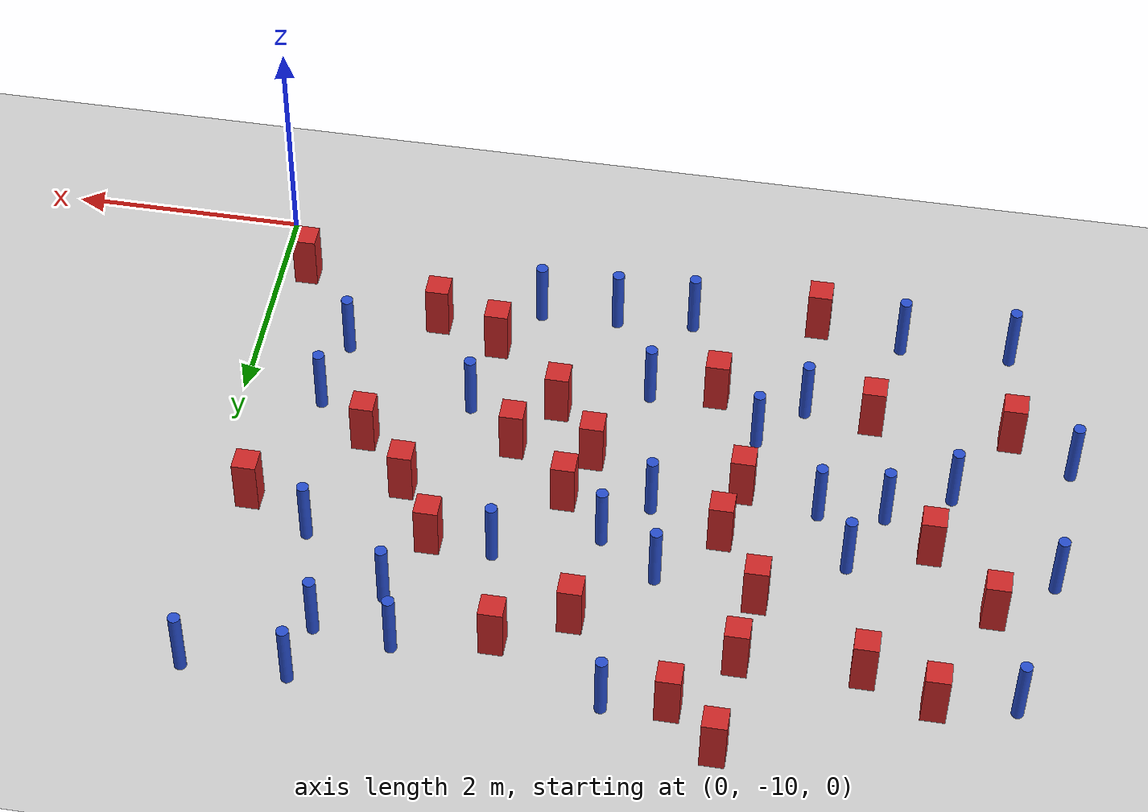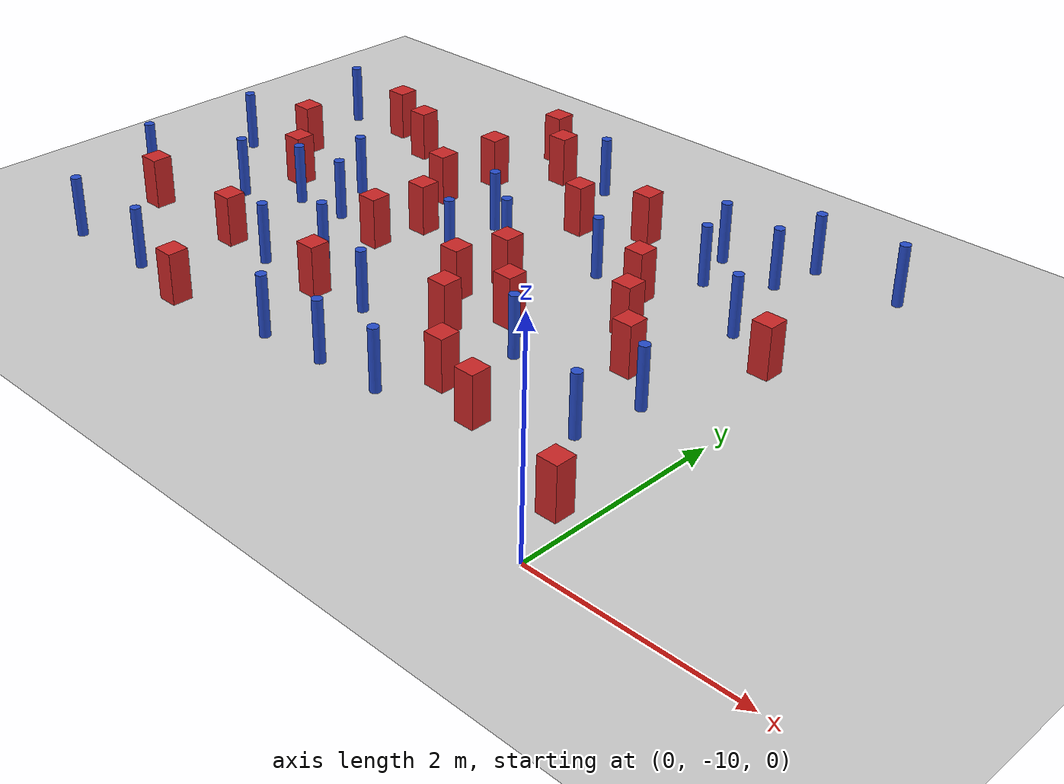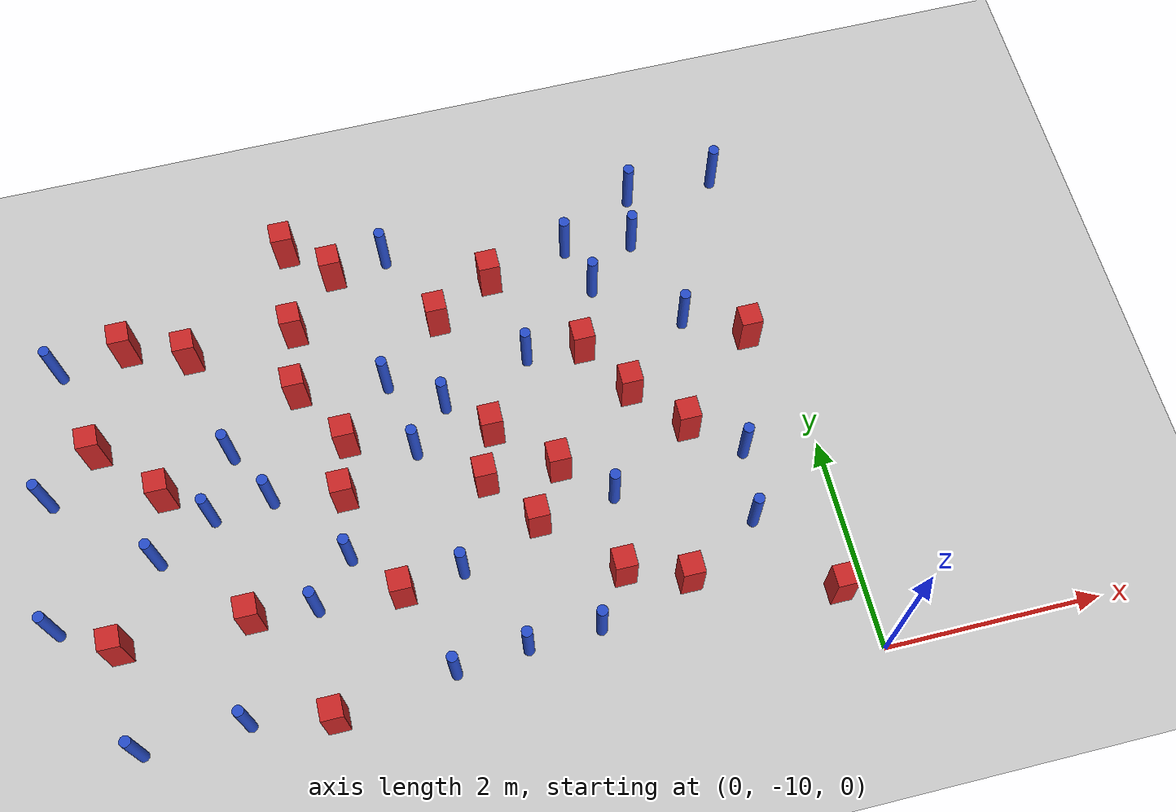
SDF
<sdf version="1.6">
 <world name="default">
  <model name="ground_plane">
   <static>1</static>
   <link name="link">
    <collision name="collision">
     <geometry><plane><normal>0 0 1</normal><size>100 100</size></plane></geometry>
     <surface><friction><ode><mu>100</mu><mu2>50</mu2></ode></friction></surface>
    </collision>
    <visual name="visual">
     <cast_shadows>0</cast_shadows>
     <geometry><plane><normal>0 0 1</normal><size>100 100</size></plane></geometry>
     <material>
      <ambient>1.0 1.0 1.0 1.0</ambient>
      <diffuse>0.8 0.8 0.8 1.0</diffuse>
      <specular>0.01 0.01 0.01 1.000000</specular>
     </material>
    </visual>
   </link>
  </model>
  <model name="square_post_obstacle7">
   <static>true</static>
   <pose>-4.02804060044 -5.23831961809 -6.11067671241e-07 -5.50515727128e-06 -8.79689657224e-07 2.37013304536e-05</pose>
   <link name="link">
    <pose>0 0 0.25 0 -0 0</pose>
    <inertial>
     <mass>100</mass>
     <inertia>
      <ixx>0.166667</ixx>
      <ixy>0</ixy>
      <ixz>0</ixz>
      <iyy>0.166667</iyy>
      <iyz>0</iyz>
      <izz>0.166667</izz>
     </inertia>
    </inertial>
    <collision name="collision"><geometry><box><size>.2 .2 .5</size></box></geometry></collision>
    <visual name="visual">
     <geometry><box><size>.2 .2 .5</size></box></geometry>
     <material>
      <script><name>Gazebo/Red</name><uri>file://media/materials/scripts/gazebo.material</uri></script>
     </material>
    </visual>
   </link>
  </model>
  <model name="pole_obstacle6">
   <static>true</static>
   <pose>-6.9229522516 -6.95452196529 -9.47619616065e-06 5.49618799737e-07 2.36310414037e-07 -1.55090534814e-07</pose>
   <link name="link">
    <pose>0 0 0.3 0 -0 0</pose>
    <inertial>
     <mass>1</mass>
     <inertia><ixx>0.145833</ixx><ixy>0</ixy><ixz>0</ixz><iyy>0.145833</iyy><iyz>0</iyz><izz>0.125</izz></inertia>
    </inertial>
    <collision name="collision">
     <geometry><cylinder><radius>0.05</radius><length>.6</length></cylinder></geometry>
    </collision>
    <visual name="visual">
     <geometry><cylinder><radius>0.05</radius><length>.6</length></cylinder></geometry>
     <material>
      <script><name>Gazebo/Blue</name><uri>file://media/materials/scripts/gazebo.material</uri></script>
     </material>
    </visual>
   </link>
  </model>
  <model name="pole_obstacle11">
   <static>true</static>
   <pose>-3.60925218692 -7.22983239693 -9.47619616065e-06 5.49618799738e-07 2.3631041406e-07 -1.55090534801e-07</pose>
   <link name="link">
    <pose>0 0 0.3 0 -0 0</pose>
    <inertial>
     <mass>1</mass>
     <inertia><ixx>0.145833</ixx><ixy>0</ixy><ixz>0</ixz><iyy>0.145833</iyy><iyz>0</iyz><izz>0.125</izz></inertia>
    </inertial>
    <collision name="collision">
     <geometry><cylinder><radius>0.05</radius><length>.6</length></cylinder></geometry>
    </collision>
    <visual name="visual">
     <geometry><cylinder><radius>0.05</radius><length>.6</length></cylinder></geometry>
     <material>
      <script><name>Gazebo/Blue</name><uri>file://media/materials/scripts/gazebo.material</uri></script>
     </material>
    </visual>
   </link>
  </model>
  <model name="square_post_obstacle24">
   <static>true</static>
   <pose>-5.48483218585 -5.80153002586 -6.11067671241e-07 -5.50515727128e-06 -8.79689657224e-07 2.37013304536e-05</pose>
   <link name="link">
    <pose>0 0 0.25 0 -0 0</pose>
    <inertial>
     <mass>100</mass>
     <inertia>
      <ixx>0.166667</ixx>
      <ixy>0</ixy>
      <ixz>0</ixz>
      <iyy>0.166667</iyy>
      <iyz>0</iyz>
      <izz>0.166667</izz>
     </inertia>
    </inertial>
    <collision name="collision"><geometry><box><size>.2 .2 .5</size></box></geometry></collision>
    <visual name="visual">
     <geometry><box><size>.2 .2 .5</size></box></geometry>
     <material>
      <script><name>Gazebo/Red</name><uri>file://media/materials/scripts/gazebo.material</uri></script>
     </material>
    </visual>
   </link>
  </model>
  <model name="square_post_obstacle25">
   <static>true</static>
   <pose>-3.05364938784 -7.67598235682 -6.11067671241e-07 -5.50515727128e-06 -8.79689657224e-07 2.37013304536e-05</pose>
   <link name="link">
    <pose>0 0 0.25 0 -0 0</pose>
    <inertial>
     <mass>100</mass>
     <inertia>
      <ixx>0.166667</ixx>
      <ixy>0</ixy>
      <ixz>0</ixz>
      <iyy>0.166667</iyy>
      <iyz>0</iyz>
      <izz>0.166667</izz>
     </inertia>
    </inertial>
    <collision name="collision"><geometry><box><size>.2 .2 .5</size></box></geometry></collision>
    <visual name="visual">
     <geometry><box><size>.2 .2 .5</size></box></geometry>
     <material>
      <script><name>Gazebo/Red</name><uri>file://media/materials/scripts/gazebo.material</uri></script>
     </material>
    </visual>
   </link>
  </model>
  <model name="pole_obstacle19">
   <static>true</static>
   <pose>-6.03911409599 -7.73787527772 -9.47619616065e-06 5.49618799737e-07 2.36310414037e-07 -1.55090534814e-07</pose>
   <link name="link">
    <pose>0 0 0.3 0 -0 0</pose>
    <inertial>
     <mass>1</mass>
     <inertia><ixx>0.145833</ixx><ixy>0</ixy><ixz>0</ixz><iyy>0.145833</iyy><iyz>0</iyz><izz>0.125</izz></inertia>
    </inertial>
    <collision name="collision">
     <geometry><cylinder><radius>0.05</radius><length>.6</length></cylinder></geometry>
    </collision>
    <visual name="visual">
     <geometry><cylinder><radius>0.05</radius><length>.6</length></cylinder></geometry>
     <material>
      <script><name>Gazebo/Blue</name><uri>file://media/materials/scripts/gazebo.material</uri></script>
     </material>
    </visual>
   </link>
  </model>
  <model name="square_post_obstacle29">
   <static>true</static>
   <pose>-5.30857663624 -8.45025386282 -6.11067671241e-07 -5.50515727128e-06 -8.79689657224e-07 2.37013304536e-05</pose>
   <link name="link">
    <pose>0 0 0.25 0 -0 0</pose>
    <inertial>
     <mass>100</mass>
     <inertia>
      <ixx>0.166667</ixx>
      <ixy>0</ixy>
      <ixz>0</ixz>
      <iyy>0.166667</iyy>
      <iyz>0</iyz>
      <izz>0.166667</izz>
     </inertia>
    </inertial>
    <collision name="collision"><geometry><box><size>.2 .2 .5</size></box></geometry></collision>
    <visual name="visual">
     <geometry><box><size>.2 .2 .5</size></box></geometry>
     <material>
      <script><name>Gazebo/Red</name><uri>file://media/materials/scripts/gazebo.material</uri></script>
     </material>
    </visual>
   </link>
  </model>
  <model name="pole_obstacle32">
   <static>true</static>
   <pose>-1.63588111275 -5.95905431088 -9.47619616065e-06 5.49618799737e-07 2.36310414061e-07 -1.550905348e-07</pose>
   <link name="link">
    <pose>0 0 0.3 0 -0 0</pose>
    <inertial>
     <mass>1</mass>
     <inertia><ixx>0.145833</ixx><ixy>0</ixy><ixz>0</ixz><iyy>0.145833</iyy><iyz>0</iyz><izz>0.125</izz></inertia>
    </inertial>
    <collision name="collision">
     <geometry><cylinder><radius>0.05</radius><length>.6</length></cylinder></geometry>
    </collision>
    <visual name="visual">
     <geometry><cylinder><radius>0.05</radius><length>.6</length></cylinder></geometry>
     <material>
      <script><name>Gazebo/Blue</name><uri>file://media/materials/scripts/gazebo.material</uri></script>
     </material>
    </visual>
   </link>
  </model>
  <model name="pole_obstacle34">
   <static>true</static>
   <pose>-6.69508582564 -5.67478176775 -9.47619616065e-06 5.49618799737e-07 2.36310414037e-07 -1.55090534814e-07</pose>
   <link name="link">
    <pose>0 0 0.3 0 -0 0</pose>
    <inertial>
     <mass>1</mass>
     <inertia><ixx>0.145833</ixx><ixy>0</ixy><ixz>0</ixz><iyy>0.145833</iyy><iyz>0</iyz><izz>0.125</izz></inertia>
    </inertial>
    <collision name="collision">
     <geometry><cylinder><radius>0.05</radius><length>.6</length></cylinder></geometry>
    </collision>
    <visual name="visual">
     <geometry><cylinder><radius>0.05</radius><length>.6</length></cylinder></geometry>
     <material>
      <script><name>Gazebo/Blue</name><uri>file://media/materials/scripts/gazebo.material</uri></script>
     </material>
    </visual>
   </link>
  </model>
  <model name="pole_obstacle35">
   <static>true</static>
   <pose>-0.792733380238 -8.59457340625 -9.47619616065e-06 5.49618799737e-07 2.36310414038e-07 -1.55090534813e-07</pose>
   <link name="link">
    <pose>0 0 0.3 0 -0 0</pose>
    <inertial>
     <mass>1</mass>
     <inertia><ixx>0.145833</ixx><ixy>0</ixy><ixz>0</ixz><iyy>0.145833</iyy><iyz>0</iyz><izz>0.125</izz></inertia>
    </inertial>
    <collision name="collision">
     <geometry><cylinder><radius>0.05</radius><length>.6</length></cylinder></geometry>
    </collision>
    <visual name="visual">
     <geometry><cylinder><radius>0.05</radius><length>.6</length></cylinder></geometry>
     <material>
      <script><name>Gazebo/Blue</name><uri>file://media/materials/scripts/gazebo.material</uri></script>
     </material>
    </visual>
   </link>
  </model>
  <model name="pole_obstacle37">
   <static>true</static>
   <pose>-3.74282692416 -6.50302156046 -9.47619616065e-06 5.49618799738e-07 2.3631041406e-07 -1.55090534801e-07</pose>
   <link name="link">
    <pose>0 0 0.3 0 -0 0</pose>
    <inertial>
     <mass>1</mass>
     <inertia><ixx>0.145833</ixx><ixy>0</ixy><ixz>0</ixz><iyy>0.145833</iyy><iyz>0</iyz><izz>0.125</izz></inertia>
    </inertial>
    <collision name="collision">
     <geometry><cylinder><radius>0.05</radius><length>.6</length></cylinder></geometry>
    </collision>
    <visual name="visual">
     <geometry><cylinder><radius>0.05</radius><length>.6</length></cylinder></geometry>
     <material>
      <script><name>Gazebo/Blue</name><uri>file://media/materials/scripts/gazebo.material</uri></script>
     </material>
    </visual>
   </link>
  </model>
  <model name="pole_obstacle51">
   <static>true</static>
   <pose>-6.40917971997 -9.39622680746 -9.47619616065e-06 5.49618799737e-07 2.36310414065e-07 -1.55090534796e-07</pose>
   <link name="link">
    <pose>0 0 0.3 0 -0 0</pose>
    <inertial>
     <mass>1</mass>
     <inertia><ixx>0.145833</ixx><ixy>0</ixy><ixz>0</ixz><iyy>0.145833</iyy><iyz>0</iyz><izz>0.125</izz></inertia>
    </inertial>
    <collision name="collision">
     <geometry><cylinder><radius>0.05</radius><length>.6</length></cylinder></geometry>
    </collision>
    <visual name="visual">
     <geometry><cylinder><radius>0.05</radius><length>.6</length></cylinder></geometry>
     <material>
      <script><name>Gazebo/Blue</name><uri>file://media/materials/scripts/gazebo.material</uri></script>
     </material>
    </visual>
   </link>
  </model>
  <model name="square_post_obstacle56">
   <static>true</static>
   <pose>-6.47427793407 -8.45497912225 -6.11067671241e-07 -5.50515727128e-06 -8.79689657224e-07 2.37013304536e-05</pose>
   <link name="link">
    <pose>0 0 0.25 0 -0 0</pose>
    <inertial>
     <mass>100</mass>
     <inertia>
      <ixx>0.166667</ixx>
      <ixy>0</ixy>
      <ixz>0</ixz>
      <iyy>0.166667</iyy>
      <iyz>0</iyz>
      <izz>0.166667</izz>
     </inertia>
    </inertial>
    <collision name="collision"><geometry><box><size>.2 .2 .5</size></box></geometry></collision>
    <visual name="visual">
     <geometry><box><size>.2 .2 .5</size></box></geometry>
     <material>
      <script><name>Gazebo/Red</name><uri>file://media/materials/scripts/gazebo.material</uri></script>
     </material>
    </visual>
   </link>
  </model>
  <model name="square_post_obstacle61">
   <static>true</static>
   <pose>-4.32503650421 -7.51398686989 -6.11067671241e-07 -5.50515727128e-06 -8.79689657224e-07 2.37013304536e-05</pose>
   <link name="link">
    <pose>0 0 0.25 0 -0 0</pose>
    <inertial>
     <mass>100</mass>
     <inertia>
      <ixx>0.166667</ixx>
      <ixy>0</ixy>
      <ixz>0</ixz>
      <iyy>0.166667</iyy>
      <iyz>0</iyz>
      <izz>0.166667</izz>
     </inertia>
    </inertial>
    <collision name="collision"><geometry><box><size>.2 .2 .5</size></box></geometry></collision>
    <visual name="visual">
     <geometry><box><size>.2 .2 .5</size></box></geometry>
     <material>
      <script><name>Gazebo/Red</name><uri>file://media/materials/scripts/gazebo.material</uri></script>
     </material>
    </visual>
   </link>
  </model>
  <model name="pole_obstacle62">
   <static>true</static>
   <pose>-1.79225064878 -5.47732661525 -9.47619616065e-06 5.49618799737e-07 2.36310414061e-07 -1.550905348e-07</pose>
   <link name="link">
    <pose>0 0 0.3 0 -0 0</pose>
    <inertial>
     <mass>1</mass>
     <inertia><ixx>0.145833</ixx><ixy>0</ixy><ixz>0</ixz><iyy>0.145833</iyy><iyz>0</iyz><izz>0.125</izz></inertia>
    </inertial>
    <collision name="collision">
     <geometry><cylinder><radius>0.05</radius><length>.6</length></cylinder></geometry>
    </collision>
    <visual name="visual">
     <geometry><cylinder><radius>0.05</radius><length>.6</length></cylinder></geometry>
     <material>
      <script><name>Gazebo/Blue</name><uri>file://media/materials/scripts/gazebo.material</uri></script>
     </material>
    </visual>
   </link>
  </model>
  <model name="pole_obstacle66">
   <static>true</static>
   <pose>-2.41190833652 -6.53171262355 -9.47619616065e-06 5.49618799738e-07 2.3631041406e-07 -1.55090534801e-07</pose>
   <link name="link">
    <pose>0 0 0.3 0 -0 0</pose>
    <inertial>
     <mass>1</mass>
     <inertia><ixx>0.145833</ixx><ixy>0</ixy><ixz>0</ixz><iyy>0.145833</iyy><iyz>0</iyz><izz>0.125</izz></inertia>
    </inertial>
    <collision name="collision">
     <geometry><cylinder><radius>0.05</radius><length>.6</length></cylinder></geometry>
    </collision>
    <visual name="visual">
     <geometry><cylinder><radius>0.05</radius><length>.6</length></cylinder></geometry>
     <material>
      <script><name>Gazebo/Blue</name><uri>file://media/materials/scripts/gazebo.material</uri></script>
     </material>
    </visual>
   </link>
  </model>
  <model name="square_post_obstacle71">
   <static>true</static>
   <pose>-0.244228543276 -9.40671352236 -6.11067671241e-07 -5.50515727128e-06 -8.79689657224e-07 2.37013304536e-05</pose>
   <link name="link">
    <pose>0 0 0.25 0 -0 0</pose>
    <inertial>
     <mass>100</mass>
     <inertia>
      <ixx>0.166667</ixx>
      <ixy>0</ixy>
      <ixz>0</ixz>
      <iyy>0.166667</iyy>
      <iyz>0</iyz>
      <izz>0.166667</izz>
     </inertia>
    </inertial>
    <collision name="collision"><geometry><box><size>.2 .2 .5</size></box></geometry></collision>
    <visual name="visual">
     <geometry><box><size>.2 .2 .5</size></box></geometry>
     <material>
      <script><name>Gazebo/Red</name><uri>file://media/materials/scripts/gazebo.material</uri></script>
     </material>
    </visual>
   </link>
  </model>
  <model name="pole_obstacle68">
   <static>true</static>
   <pose>-3.02412012906 -9.27624175386 -9.4761961606e-06 5.49618799729e-07 2.36310414e-07 -1.55090534824e-07</pose>
   <link name="link">
    <pose>0 0 0.3 0 -0 0</pose>
    <inertial>
     <mass>1</mass>
     <inertia><ixx>0.145833</ixx><ixy>0</ixy><ixz>0</ixz><iyy>0.145833</iyy><iyz>0</iyz><izz>0.125</izz></inertia>
    </inertial>
    <collision name="collision">
     <geometry><cylinder><radius>0.05</radius><length>.6</length></cylinder></geometry>
    </collision>
    <visual name="visual">
     <geometry><cylinder><radius>0.05</radius><length>.6</length></cylinder></geometry>
     <material>
      <script><name>Gazebo/Blue</name><uri>file://media/materials/scripts/gazebo.material</uri></script>
     </material>
    </visual>
   </link>
  </model>
  <model name="pole_obstacle73">
   <static>true</static>
   <pose>-5.47801577004 -9.36590777581 -9.47619616065e-06 5.49618799737e-07 2.36310414065e-07 -1.55090534796e-07</pose>
   <link name="link">
    <pose>0 0 0.3 0 -0 0</pose>
    <inertial>
     <mass>1</mass>
     <inertia><ixx>0.145833</ixx><ixy>0</ixy><ixz>0</ixz><iyy>0.145833</iyy><iyz>0</iyz><izz>0.125</izz></inertia>
    </inertial>
    <collision name="collision">
     <geometry><cylinder><radius>0.05</radius><length>.6</length></cylinder></geometry>
    </collision>
    <visual name="visual">
     <geometry><cylinder><radius>0.05</radius><length>.6</length></cylinder></geometry>
     <material>
      <script><name>Gazebo/Blue</name><uri>file://media/materials/scripts/gazebo.material</uri></script>
     </material>
    </visual>
   </link>
  </model>
  <model name="pole_obstacle102">
   <static>true</static>
   <pose>-3.42648449714 -8.45680763506 -9.4761961606e-06 5.49618799729e-07 2.36310414e-07 -1.55090534824e-07</pose>
   <link name="link">
    <pose>0 0 0.3 0 -0 0</pose>
    <inertial>
     <mass>1</mass>
     <inertia><ixx>0.145833</ixx><ixy>0</ixy><ixz>0</ixz><iyy>0.145833</iyy><iyz>0</iyz><izz>0.125</izz></inertia>
    </inertial>
    <collision name="collision">
     <geometry><cylinder><radius>0.05</radius><length>.6</length></cylinder></geometry>
    </collision>
    <visual name="visual">
     <geometry><cylinder><radius>0.05</radius><length>.6</length></cylinder></geometry>
     <material>
      <script><name>Gazebo/Blue</name><uri>file://media/materials/scripts/gazebo.material</uri></script>
     </material>
    </visual>
   </link>
  </model>
  <model name="square_post_obstacle91">
   <static>true</static>
   <pose>-1.88404782933 -6.56755453325 -6.11067671241e-07 -5.50515727128e-06 -8.79689657224e-07 2.37013304536e-05</pose>
   <link name="link">
    <pose>0 0 0.25 0 -0 0</pose>
    <inertial>
     <mass>100</mass>
     <inertia>
      <ixx>0.166667</ixx>
      <ixy>0</ixy>
      <ixz>0</ixz>
      <iyy>0.166667</iyy>
      <iyz>0</iyz>
      <izz>0.166667</izz>
     </inertia>
    </inertial>
    <collision name="collision"><geometry><box><size>.2 .2 .5</size></box></geometry></collision>
    <visual name="visual">
     <geometry><box><size>.2 .2 .5</size></box></geometry>
     <material>
      <script><name>Gazebo/Red</name><uri>file://media/materials/scripts/gazebo.material</uri></script>
     </material>
    </visual>
   </link>
  </model>
  <model name="pole_obstacle110">
   <static>true</static>
   <pose>-0.883534546992 -6.4968844329 -9.47619616065e-06 5.49618799737e-07 2.36310414065e-07 -1.55090534796e-07</pose>
   <link name="link">
    <pose>0 0 0.3 0 -0 0</pose>
    <inertial>
     <mass>1</mass>
     <inertia><ixx>0.145833</ixx><ixy>0</ixy><ixz>0</ixz><iyy>0.145833</iyy><iyz>0</iyz><izz>0.125</izz></inertia>
    </inertial>
    <collision name="collision">
     <geometry><cylinder><radius>0.05</radius><length>.6</length></cylinder></geometry>
    </collision>
    <visual name="visual">
     <geometry><cylinder><radius>0.05</radius><length>.6</length></cylinder></geometry>
     <material>
      <script><name>Gazebo/Blue</name><uri>file://media/materials/scripts/gazebo.material</uri></script>
     </material>
    </visual>
   </link>
  </model>
  <model name="pole_obstacle117">
   <static>true</static>
   <pose>-1.95343331633 -8.07592356216 -9.47619616065e-06 5.49618799737e-07 2.36310414046e-07 -1.55090534809e-07</pose>
   <link name="link">
    <pose>0 0 0.3 0 -0 0</pose>
    <inertial>
     <mass>1</mass>
     <inertia><ixx>0.145833</ixx><ixy>0</ixy><ixz>0</ixz><iyy>0.145833</iyy><iyz>0</iyz><izz>0.125</izz></inertia>
    </inertial>
    <collision name="collision">
     <geometry><cylinder><radius>0.05</radius><length>.6</length></cylinder></geometry>
    </collision>
    <visual name="visual">
     <geometry><cylinder><radius>0.05</radius><length>.6</length></cylinder></geometry>
     <material>
      <script><name>Gazebo/Blue</name><uri>file://media/materials/scripts/gazebo.material</uri></script>
     </material>
    </visual>
   </link>
  </model>
  <model name="square_post_obstacle105">
   <static>true</static>
   <pose>-4.21269405957 -6.99620168074 -6.11067671241e-07 -5.50515727128e-06 -8.79689657224e-07 2.37013304536e-05</pose>
   <link name="link">
    <pose>0 0 0.25 0 -0 0</pose>
    <inertial>
     <mass>100</mass>
     <inertia>
      <ixx>0.166667</ixx>
      <ixy>0</ixy>
      <ixz>0</ixz>
      <iyy>0.166667</iyy>
      <iyz>0</iyz>
      <izz>0.166667</izz>
     </inertia>
    </inertial>
    <collision name="collision"><geometry><box><size>.2 .2 .5</size></box></geometry></collision>
    <visual name="visual">
     <geometry><box><size>.2 .2 .5</size></box></geometry>
     <material>
      <script><name>Gazebo/Red</name><uri>file://media/materials/scripts/gazebo.material</uri></script>
     </material>
    </visual>
   </link>
  </model>
  <model name="square_post_obstacle107">
   <static>true</static>
   <pose>-6.44963662374 -6.55954596812 -6.11067671241e-07 -5.50515727128e-06 -8.79689657224e-07 2.37013304536e-05</pose>
   <link name="link">
    <pose>0 0 0.25 0 -0 0</pose>
    <inertial>
     <mass>100</mass>
     <inertia>
      <ixx>0.166667</ixx>
      <ixy>0</ixy>
      <ixz>0</ixz>
      <iyy>0.166667</iyy>
      <iyz>0</iyz>
      <izz>0.166667</izz>
     </inertia>
    </inertial>
    <collision name="collision"><geometry><box><size>.2 .2 .5</size></box></geometry></collision>
    <visual name="visual">
     <geometry><box><size>.2 .2 .5</size></box></geometry>
     <material>
      <script><name>Gazebo/Red</name><uri>file://media/materials/scripts/gazebo.material</uri></script>
     </material>
    </visual>
   </link>
  </model>
  <model name="square_post_obstacle109">
   <static>true</static>
   <pose>-2.68434446391 -8.17020522767 -6.11067671241e-07 -5.50515727128e-06 -8.79689657224e-07 2.37013304536e-05</pose>
   <link name="link">
    <pose>0 0 0.25 0 -0 0</pose>
    <inertial>
     <mass>100</mass>
     <inertia>
      <ixx>0.166667</ixx>
      <ixy>0</ixy>
      <ixz>0</ixz>
      <iyy>0.166667</iyy>
      <iyz>0</iyz>
      <izz>0.166667</izz>
     </inertia>
    </inertial>
    <collision name="collision"><geometry><box><size>.2 .2 .5</size></box></geometry></collision>
    <visual name="visual">
     <geometry><box><size>.2 .2 .5</size></box></geometry>
     <material>
      <script><name>Gazebo/Red</name><uri>file://media/materials/scripts/gazebo.material</uri></script>
     </material>
    </visual>
   </link>
  </model>
  <model name="pole_obstacle127">
   <static>true</static>
   <pose>-4.96752273239 -7.38994164863 -9.47619616065e-06 5.49618799737e-07 2.36310414037e-07 -1.55090534814e-07</pose>
   <link name="link">
    <pose>0 0 0.3 0 -0 0</pose>
    <inertial>
     <mass>1</mass>
     <inertia><ixx>0.145833</ixx><ixy>0</ixy><ixz>0</ixz><iyy>0.145833</iyy><iyz>0</iyz><izz>0.125</izz></inertia>
    </inertial>
    <collision name="collision">
     <geometry><cylinder><radius>0.05</radius><length>.6</length></cylinder></geometry>
    </collision>
    <visual name="visual">
     <geometry><cylinder><radius>0.05</radius><length>.6</length></cylinder></geometry>
     <material>
      <script><name>Gazebo/Blue</name><uri>file://media/materials/scripts/gazebo.material</uri></script>
     </material>
    </visual>
   </link>
  </model>
  <model name="pole_obstacle129">
   <static>true</static>
   <pose>-3.67971102991 -9.33762450453 -9.4761961606e-06 5.49618799729e-07 2.36310414e-07 -1.55090534824e-07</pose>
   <link name="link">
    <pose>0 0 0.3 0 -0 0</pose>
    <inertial>
     <mass>1</mass>
     <inertia><ixx>0.145833</ixx><ixy>0</ixy><ixz>0</ixz><iyy>0.145833</iyy><iyz>0</iyz><izz>0.125</izz></inertia>
    </inertial>
    <collision name="collision">
     <geometry><cylinder><radius>0.05</radius><length>.6</length></cylinder></geometry>
    </collision>
    <visual name="visual">
     <geometry><cylinder><radius>0.05</radius><length>.6</length></cylinder></geometry>
     <material>
      <script><name>Gazebo/Blue</name><uri>file://media/materials/scripts/gazebo.material</uri></script>
     </material>
    </visual>
   </link>
  </model>
  <model name="pole_obstacle139">
   <static>true</static>
   <pose>-2.36442192615 -9.24928817641 -9.4761961606e-06 5.49618799729e-07 2.36310414e-07 -1.55090534824e-07</pose>
   <link name="link">
    <pose>0 0 0.3 0 -0 0</pose>
    <inertial>
     <mass>1</mass>
     <inertia><ixx>0.145833</ixx><ixy>0</ixy><ixz>0</ixz><iyy>0.145833</iyy><iyz>0</iyz><izz>0.125</izz></inertia>
    </inertial>
    <collision name="collision">
     <geometry><cylinder><radius>0.05</radius><length>.6</length></cylinder></geometry>
    </collision>
    <visual name="visual">
     <geometry><cylinder><radius>0.05</radius><length>.6</length></cylinder></geometry>
     <material>
      <script><name>Gazebo/Blue</name><uri>file://media/materials/scripts/gazebo.material</uri></script>
     </material>
    </visual>
   </link>
  </model>
  <model name="square_post_obstacle125">
   <static>true</static>
   <pose>-2.38102587301 -7.69270485563 -6.11067671241e-07 -5.50515727128e-06 -8.79689657224e-07 2.37013304536e-05</pose>
   <link name="link">
    <pose>0 0 0.25 0 -0 0</pose>
    <inertial>
     <mass>100</mass>
     <inertia>
      <ixx>0.166667</ixx>
      <ixy>0</ixy>
      <ixz>0</ixz>
      <iyy>0.166667</iyy>
      <iyz>0</iyz>
      <izz>0.166667</izz>
     </inertia>
    </inertial>
    <collision name="collision"><geometry><box><size>.2 .2 .5</size></box></geometry></collision>
    <visual name="visual">
     <geometry><box><size>.2 .2 .5</size></box></geometry>
     <material>
      <script><name>Gazebo/Red</name><uri>file://media/materials/scripts/gazebo.material</uri></script>
     </material>
    </visual>
   </link>
  </model>
  <model name="square_post_obstacle129">
   <static>true</static>
   <pose>-4.48964815799 -5.75741002966 -6.11067671241e-07 -5.50515727128e-06 -8.79689657224e-07 2.37013304536e-05</pose>
   <link name="link">
    <pose>0 0 0.25 0 -0 0</pose>
    <inertial>
     <mass>100</mass>
     <inertia>
      <ixx>0.166667</ixx>
      <ixy>0</ixy>
      <ixz>0</ixz>
      <iyy>0.166667</iyy>
      <iyz>0</iyz>
      <izz>0.166667</izz>
     </inertia>
    </inertial>
    <collision name="collision"><geometry><box><size>.2 .2 .5</size></box></geometry></collision>
    <visual name="visual">
     <geometry><box><size>.2 .2 .5</size></box></geometry>
     <material>
      <script><name>Gazebo/Red</name><uri>file://media/materials/scripts/gazebo.material</uri></script>
     </material>
    </visual>
   </link>
  </model>
  <model name="square_post_obstacle132">
   <static>true</static>
   <pose>-6.05193132309 -5.58523928125 -6.11067671241e-07 -5.50515727128e-06 -8.79689657224e-07 2.37013304536e-05</pose>
   <link name="link">
    <pose>0 0 0.25 0 -0 0</pose>
    <inertial>
     <mass>100</mass>
     <inertia>
      <ixx>0.166667</ixx>
      <ixy>0</ixy>
      <ixz>0</ixz>
      <iyy>0.166667</iyy>
      <iyz>0</iyz>
      <izz>0.166667</izz>
     </inertia>
    </inertial>
    <collision name="collision"><geometry><box><size>.2 .2 .5</size></box></geometry></collision>
    <visual name="visual">
     <geometry><box><size>.2 .2 .5</size></box></geometry>
     <material>
      <script><name>Gazebo/Red</name><uri>file://media/materials/scripts/gazebo.material</uri></script>
     </material>
    </visual>
   </link>
  </model>
  <model name="pole_obstacle152">
   <static>true</static>
   <pose>-0.692297219411 -7.92937206651 -9.47619616065e-06 5.49618799737e-07 2.36310414065e-07 -1.55090534796e-07</pose>
   <link name="link">
    <pose>0 0 0.3 0 -0 0</pose>
    <inertial>
     <mass>1</mass>
     <inertia><ixx>0.145833</ixx><ixy>0</ixy><ixz>0</ixz><iyy>0.145833</iyy><iyz>0</iyz><izz>0.125</izz></inertia>
    </inertial>
    <collision name="collision">
     <geometry><cylinder><radius>0.05</radius><length>.6</length></cylinder></geometry>
    </collision>
    <visual name="visual">
     <geometry><cylinder><radius>0.05</radius><length>.6</length></cylinder></geometry>
     <material>
      <script><name>Gazebo/Blue</name><uri>file://media/materials/scripts/gazebo.material</uri></script>
     </material>
    </visual>
   </link>
  </model>
  <model name="square_post_obstacle148">
   <static>true</static>
   <pose>-2.57745570309 -5.64628463419 -6.11067671241e-07 -5.50515727128e-06 -8.79689657224e-07 2.37013304536e-05</pose>
   <link name="link">
    <pose>0 0 0.25 0 -0 0</pose>
    <inertial>
     <mass>100</mass>
     <inertia>
      <ixx>0.166667</ixx>
      <ixy>0</ixy>
      <ixz>0</ixz>
      <iyy>0.166667</iyy>
      <iyz>0</iyz>
      <izz>0.166667</izz>
     </inertia>
    </inertial>
    <collision name="collision"><geometry><box><size>.2 .2 .5</size></box></geometry></collision>
    <visual name="visual">
     <geometry><box><size>.2 .2 .5</size></box></geometry>
     <material>
      <script><name>Gazebo/Red</name><uri>file://media/materials/scripts/gazebo.material</uri></script>
     </material>
    </visual>
   </link>
  </model>
  <model name="square_post_obstacle150">
   <static>true</static>
   <pose>-1.50424290357 -8.99944224144 -6.11067671241e-07 -5.50515727128e-06 -8.79689657224e-07 2.37013304536e-05</pose>
   <link name="link">
    <pose>0 0 0.25 0 -0 0</pose>
    <inertial>
     <mass>100</mass>
     <inertia>
      <ixx>0.166667</ixx>
      <ixy>0</ixy>
      <ixz>0</ixz>
      <iyy>0.166667</iyy>
      <iyz>0</iyz>
      <izz>0.166667</izz>
     </inertia>
    </inertial>
    <collision name="collision"><geometry><box><size>.2 .2 .5</size></box></geometry></collision>
    <visual name="visual">
     <geometry><box><size>.2 .2 .5</size></box></geometry>
     <material>
      <script><name>Gazebo/Red</name><uri>file://media/materials/scripts/gazebo.material</uri></script>
     </material>
    </visual>
   </link>
  </model>
  <model name="pole_obstacle157">
   <static>true</static>
   <pose>-6.98918646922 -8.17164380996 -9.47619616065e-06 5.49618799737e-07 2.36310414065e-07 -1.55090534796e-07</pose>
   <link name="link">
    <pose>0 0 0.3 0 -0 0</pose>
    <inertial>
     <mass>1</mass>
     <inertia><ixx>0.145833</ixx><ixy>0</ixy><ixz>0</ixz><iyy>0.145833</iyy><iyz>0</iyz><izz>0.125</izz></inertia>
    </inertial>
    <collision name="collision">
     <geometry><cylinder><radius>0.05</radius><length>.6</length></cylinder></geometry>
    </collision>
    <visual name="visual">
     <geometry><cylinder><radius>0.05</radius><length>.6</length></cylinder></geometry>
     <material>
      <script><name>Gazebo/Blue</name><uri>file://media/materials/scripts/gazebo.material</uri></script>
     </material>
    </visual>
   </link>
  </model>
  <model name="pole_obstacle161">
   <static>true</static>
   <pose>-3.51100350352 -5.17579819729 -9.47619616065e-06 5.49618799738e-07 2.3631041406e-07 -1.55090534801e-07</pose>
   <link name="link">
    <pose>0 0 0.3 0 -0 0</pose>
    <inertial>
     <mass>1</mass>
     <inertia><ixx>0.145833</ixx><ixy>0</ixy><ixz>0</ixz><iyy>0.145833</iyy><iyz>0</iyz><izz>0.125</izz></inertia>
    </inertial>
    <collision name="collision">
     <geometry><cylinder><radius>0.05</radius><length>.6</length></cylinder></geometry>
    </collision>
    <visual name="visual">
     <geometry><cylinder><radius>0.05</radius><length>.6</length></cylinder></geometry>
     <material>
      <script><name>Gazebo/Blue</name><uri>file://media/materials/scripts/gazebo.material</uri></script>
     </material>
    </visual>
   </link>
  </model>
  <model name="pole_obstacle165">
   <static>true</static>
   <pose>-1.05436193534 -5.0544005847 -9.47619616065e-06 5.49618799737e-07 2.36310414061e-07 -1.550905348e-07</pose>
   <link name="link">
    <pose>0 0 0.3 0 -0 0</pose>
    <inertial>
     <mass>1</mass>
     <inertia><ixx>0.145833</ixx><ixy>0</ixy><ixz>0</ixz><iyy>0.145833</iyy><iyz>0</iyz><izz>0.125</izz></inertia>
    </inertial>
    <collision name="collision">
     <geometry><cylinder><radius>0.05</radius><length>.6</length></cylinder></geometry>
    </collision>
    <visual name="visual">
     <geometry><cylinder><radius>0.05</radius><length>.6</length></cylinder></geometry>
     <material>
      <script><name>Gazebo/Blue</name><uri>file://media/materials/scripts/gazebo.material</uri></script>
     </material>
    </visual>
   </link>
  </model>
  <model name="square_post_obstacle159">
   <static>true</static>
   <pose>-2.0549163433 -8.8005455484 -6.11067671241e-07 -5.50515727128e-06 -8.79689657224e-07 2.37013304536e-05</pose>
   <link name="link">
    <pose>0 0 0.25 0 -0 0</pose>
    <inertial>
     <mass>100</mass>
     <inertia>
      <ixx>0.166667</ixx>
      <ixy>0</ixy>
      <ixz>0</ixz>
      <iyy>0.166667</iyy>
      <iyz>0</iyz>
      <izz>0.166667</izz>
     </inertia>
    </inertial>
    <collision name="collision"><geometry><box><size>.2 .2 .5</size></box></geometry></collision>
    <visual name="visual">
     <geometry><box><size>.2 .2 .5</size></box></geometry>
     <material>
      <script><name>Gazebo/Red</name><uri>file://media/materials/scripts/gazebo.material</uri></script>
     </material>
    </visual>
   </link>
  </model>
  <model name="pole_obstacle171">
   <static>true</static>
   <pose>-4.37765551946 -8.09837092652 -9.47619616065e-06 5.49618799737e-07 2.36310414065e-07 -1.55090534796e-07</pose>
   <link name="link">
    <pose>0 0 0.3 0 -0 0</pose>
    <inertial>
     <mass>1</mass>
     <inertia><ixx>0.145833</ixx><ixy>0</ixy><ixz>0</ixz><iyy>0.145833</iyy><iyz>0</iyz><izz>0.125</izz></inertia>
    </inertial>
    <collision name="collision">
     <geometry><cylinder><radius>0.05</radius><length>.6</length></cylinder></geometry>
    </collision>
    <visual name="visual">
     <geometry><cylinder><radius>0.05</radius><length>.6</length></cylinder></geometry>
     <material>
      <script><name>Gazebo/Blue</name><uri>file://media/materials/scripts/gazebo.material</uri></script>
     </material>
    </visual>
   </link>
  </model>
  <model name="pole_obstacle172">
   <static>true</static>
   <pose>-0.201385028813 -5.03847887084 -9.47619616065e-06 5.49618799737e-07 2.36310414064e-07 -1.55090534799e-07</pose>
   <link name="link">
    <pose>0 0 0.3 0 -0 0</pose>
    <inertial>
     <mass>1</mass>
     <inertia><ixx>0.145833</ixx><ixy>0</ixy><ixz>0</ixz><iyy>0.145833</iyy><iyz>0</iyz><izz>0.125</izz></inertia>
    </inertial>
    <collision name="collision">
     <geometry><cylinder><radius>0.05</radius><length>.6</length></cylinder></geometry>
    </collision>
    <visual name="visual">
     <geometry><cylinder><radius>0.05</radius><length>.6</length></cylinder></geometry>
     <material>
      <script><name>Gazebo/Blue</name><uri>file://media/materials/scripts/gazebo.material</uri></script>
     </material>
    </visual>
   </link>
  </model>
  <model name="square_post_obstacle163">
   <static>true</static>
   <pose>-3.98729071724 -8.53159064833 -6.11067671241e-07 -5.50515727128e-06 -8.79689657224e-07 2.37013304536e-05</pose>
   <link name="link">
    <pose>0 0 0.25 0 -0 0</pose>
    <inertial>
     <mass>100</mass>
     <inertia>
      <ixx>0.166667</ixx>
      <ixy>0</ixy>
      <ixz>0</ixz>
      <iyy>0.166667</iyy>
      <iyz>0</iyz>
      <izz>0.166667</izz>
     </inertia>
    </inertial>
    <collision name="collision"><geometry><box><size>.2 .2 .5</size></box></geometry></collision>
    <visual name="visual">
     <geometry><box><size>.2 .2 .5</size></box></geometry>
     <material>
      <script><name>Gazebo/Red</name><uri>file://media/materials/scripts/gazebo.material</uri></script>
     </material>
    </visual>
   </link>
  </model>
  <model name="pole_obstacle177">
   <static>true</static>
   <pose>-5.51246201771 -7.43982174781 -9.47619616065e-06 5.49618799737e-07 2.36310414037e-07 -1.55090534814e-07</pose>
   <link name="link">
    <pose>0 0 0.3 0 -0 0</pose>
    <inertial>
     <mass>1</mass>
     <inertia><ixx>0.145833</ixx><ixy>0</ixy><ixz>0</ixz><iyy>0.145833</iyy><iyz>0</iyz><izz>0.125</izz></inertia>
    </inertial>
    <collision name="collision">
     <geometry><cylinder><radius>0.05</radius><length>.6</length></cylinder></geometry>
    </collision>
    <visual name="visual">
     <geometry><cylinder><radius>0.05</radius><length>.6</length></cylinder></geometry>
     <material>
      <script><name>Gazebo/Blue</name><uri>file://media/materials/scripts/gazebo.material</uri></script>
     </material>
    </visual>
   </link>
  </model>
  <model name="square_post_obstacle173">
   <static>true</static>
   <pose>-3.15049983683 -5.95837764484 -6.11067671241e-07 -5.50515727128e-06 -8.79689657224e-07 2.37013304536e-05</pose>
   <link name="link">
    <pose>0 0 0.25 0 -0 0</pose>
    <inertial>
     <mass>100</mass>
     <inertia>
      <ixx>0.166667</ixx>
      <ixy>0</ixy>
      <ixz>0</ixz>
      <iyy>0.166667</iyy>
      <iyz>0</iyz>
      <izz>0.166667</izz>
     </inertia>
    </inertial>
    <collision name="collision"><geometry><box><size>.2 .2 .5</size></box></geometry></collision>
    <visual name="visual">
     <geometry><box><size>.2 .2 .5</size></box></geometry>
     <material>
      <script><name>Gazebo/Red</name><uri>file://media/materials/scripts/gazebo.material</uri></script>
     </material>
    </visual>
   </link>
  </model>
  <model name="square_post_obstacle175">
   <static>true</static>
   <pose>-4.42643844241 -4.88002646746 -6.11067671241e-07 -5.50515727128e-06 -8.79689657224e-07 2.37013304536e-05</pose>
   <link name="link">
    <pose>0 0 0.25 0 -0 0</pose>
    <inertial>
     <mass>100</mass>
     <inertia>
      <ixx>0.166667</ixx>
      <ixy>0</ixy>
      <ixz>0</ixz>
      <iyy>0.166667</iyy>
      <iyz>0</iyz>
      <izz>0.166667</izz>
     </inertia>
    </inertial>
    <collision name="collision"><geometry><box><size>.2 .2 .5</size></box></geometry></collision>
    <visual name="visual">
     <geometry><box><size>.2 .2 .5</size></box></geometry>
     <material>
      <script><name>Gazebo/Red</name><uri>file://media/materials/scripts/gazebo.material</uri></script>
     </material>
    </visual>
   </link>
  </model>
  <model name="square_post_obstacle180">
   <static>true</static>
   <pose>-1.14462978434 -7.57323286381 -6.11067671241e-07 -5.50515727128e-06 -8.79689657224e-07 2.37013304536e-05</pose>
   <link name="link">
    <pose>0 0 0.25 0 -0 0</pose>
    <inertial>
     <mass>100</mass>
     <inertia>
      <ixx>0.166667</ixx>
      <ixy>0</ixy>
      <ixz>0</ixz>
      <iyy>0.166667</iyy>
      <iyz>0</iyz>
      <izz>0.166667</izz>
     </inertia>
    </inertial>
    <collision name="collision"><geometry><box><size>.2 .2 .5</size></box></geometry></collision>
    <visual name="visual">
     <geometry><box><size>.2 .2 .5</size></box></geometry>
     <material>
      <script><name>Gazebo/Red</name><uri>file://media/materials/scripts/gazebo.material</uri></script>
     </material>
    </visual>
   </link>
  </model>
  <model name="pole_obstacle191">
   <static>true</static>
   <pose>-3.25898844399 -6.83608169702 -9.4761961606e-06 5.49618799729e-07 2.36310414006e-07 -1.55090534822e-07</pose>
   <link name="link">
    <pose>0 0 0.3 0 -0 0</pose>
    <inertial>
     <mass>1</mass>
     <inertia><ixx>0.145833</ixx><ixy>0</ixy><ixz>0</ixz><iyy>0.145833</iyy><iyz>0</iyz><izz>0.125</izz></inertia>
    </inertial>
    <collision name="collision">
     <geometry><cylinder><radius>0.05</radius><length>.6</length></cylinder></geometry>
    </collision>
    <visual name="visual">
     <geometry><cylinder><radius>0.05</radius><length>.6</length></cylinder></geometry>
     <material>
      <script><name>Gazebo/Blue</name><uri>file://media/materials/scripts/gazebo.material</uri></script>
     </material>
    </visual>
   </link>
  </model>
  <model name="square_post_obstacle186">
   <static>true</static>
   <pose>-0.338805659282 -6.79174101172 -6.11067671241e-07 -5.50515727128e-06 -8.79689657224e-07 2.37013304536e-05</pose>
   <link name="link">
    <pose>0 0 0.25 0 -0 0</pose>
    <inertial>
     <mass>100</mass>
     <inertia>
      <ixx>0.166667</ixx>
      <ixy>0</ixy>
      <ixz>0</ixz>
      <iyy>0.166667</iyy>
      <iyz>0</iyz>
      <izz>0.166667</izz>
     </inertia>
    </inertial>
    <collision name="collision"><geometry><box><size>.2 .2 .5</size></box></geometry></collision>
    <visual name="visual">
     <geometry><box><size>.2 .2 .5</size></box></geometry>
     <material>
      <script><name>Gazebo/Red</name><uri>file://media/materials/scripts/gazebo.material</uri></script>
     </material>
    </visual>
   </link>
  </model>
  <model name="square_post_obstacle189">
   <static>true</static>
   <pose>-5.9052507232 -7.12706183797 -6.11067671241e-07 -5.50515727128e-06 -8.79689657224e-07 2.37013304536e-05</pose>
   <link name="link">
    <pose>0 0 0.25 0 -0 0</pose>
    <inertial>
     <mass>100</mass>
     <inertia>
      <ixx>0.166667</ixx>
      <ixy>0</ixy>
      <ixz>0</ixz>
      <iyy>0.166667</iyy>
      <iyz>0</iyz>
      <izz>0.166667</izz>
     </inertia>
    </inertial>
    <collision name="collision"><geometry><box><size>.2 .2 .5</size></box></geometry></collision>
    <visual name="visual">
     <geometry><box><size>.2 .2 .5</size></box></geometry>
     <material>
      <script><name>Gazebo/Red</name><uri>file://media/materials/scripts/gazebo.material</uri></script>
     </material>
    </visual>
   </link>
  </model>
  <model name="pole_obstacle197">
   <static>true</static>
   <pose>-5.25259647743 -6.87423925444 -9.47619616065e-06 5.49618799737e-07 2.36310414037e-07 -1.55090534814e-07</pose>
   <link name="link">
    <pose>0 0 0.3 0 -0 0</pose>
    <inertial>
     <mass>1</mass>
     <inertia><ixx>0.145833</ixx><ixy>0</ixy><ixz>0</ixz><iyy>0.145833</iyy><iyz>0</iyz><izz>0.125</izz></inertia>
    </inertial>
    <collision name="collision">
     <geometry><cylinder><radius>0.05</radius><length>.6</length></cylinder></geometry>
    </collision>
    <visual name="visual">
     <geometry><cylinder><radius>0.05</radius><length>.6</length></cylinder></geometry>
     <material>
      <script><name>Gazebo/Blue</name><uri>file://media/materials/scripts/gazebo.material</uri></script>
     </material>
    </visual>
   </link>
  </model>
  <model name="pole_obstacle207">
   <static>true</static>
   <pose>-1.1486747723 -5.55734643083 -9.47619616065e-06 5.49618799737e-07 2.36310414061e-07 -1.550905348e-07</pose>
   <link name="link">
    <pose>0 0 0.3 0 -0 0</pose>
    <inertial>
     <mass>1</mass>
     <inertia><ixx>0.145833</ixx><ixy>0</ixy><ixz>0</ixz><iyy>0.145833</iyy><iyz>0</iyz><izz>0.125</izz></inertia>
    </inertial>
    <collision name="collision">
     <geometry><cylinder><radius>0.05</radius><length>.6</length></cylinder></geometry>
    </collision>
    <visual name="visual">
     <geometry><cylinder><radius>0.05</radius><length>.6</length></cylinder></geometry>
     <material>
      <script><name>Gazebo/Blue</name><uri>file://media/materials/scripts/gazebo.material</uri></script>
     </material>
    </visual>
   </link>
  </model>
  <model name="pole_obstacle212">
   <static>true</static>
   <pose>-4.74333265647 -8.49610184336 -9.47619616065e-06 5.49618799737e-07 2.36310414065e-07 -1.55090534796e-07</pose>
   <link name="link">
    <pose>0 0 0.3 0 -0 0</pose>
    <inertial>
     <mass>1</mass>
     <inertia><ixx>0.145833</ixx><ixy>0</ixy><ixz>0</ixz><iyy>0.145833</iyy><iyz>0</iyz><izz>0.125</izz></inertia>
    </inertial>
    <collision name="collision">
     <geometry><cylinder><radius>0.05</radius><length>.6</length></cylinder></geometry>
    </collision>
    <visual name="visual">
     <geometry><cylinder><radius>0.05</radius><length>.6</length></cylinder></geometry>
     <material>
      <script><name>Gazebo/Blue</name><uri>file://media/materials/scripts/gazebo.material</uri></script>
     </material>
    </visual>
   </link>
  </model>
  <model name="square_post_obstacle200">
   <static>true</static>
   <pose>-4.75071408729 -9.49314321053 -6.11067671241e-07 -5.50515727128e-06 -8.79689657224e-07 2.37013304536e-05</pose>
   <link name="link">
    <pose>0 0 0.25 0 -0 0</pose>
    <inertial>
     <mass>100</mass>
     <inertia>
      <ixx>0.166667</ixx>
      <ixy>0</ixy>
      <ixz>0</ixz>
      <iyy>0.166667</iyy>
      <iyz>0</iyz>
      <izz>0.166667</izz>
     </inertia>
    </inertial>
    <collision name="collision"><geometry><box><size>.2 .2 .5</size></box></geometry></collision>
    <visual name="visual">
     <geometry><box><size>.2 .2 .5</size></box></geometry>
     <material>
      <script><name>Gazebo/Red</name><uri>file://media/materials/scripts/gazebo.material</uri></script>
     </material>
    </visual>
   </link>
  </model>
  <model name="square_post_obstacle201">
   <static>true</static>
   <pose>-4.56750768187 -6.39817491951 -6.11067671241e-07 -5.50515727128e-06 -8.79689657224e-07 2.37013304536e-05</pose>
   <link name="link">
    <pose>0 0 0.25 0 -0 0</pose>
    <inertial>
     <mass>100</mass>
     <inertia>
      <ixx>0.166667</ixx>
      <ixy>0</ixy>
      <ixz>0</ixz>
      <iyy>0.166667</iyy>
      <iyz>0</iyz>
      <izz>0.166667</izz>
     </inertia>
    </inertial>
    <collision name="collision"><geometry><box><size>.2 .2 .5</size></box></geometry></collision>
    <visual name="visual">
     <geometry><box><size>.2 .2 .5</size></box></geometry>
     <material>
      <script><name>Gazebo/Red</name><uri>file://media/materials/scripts/gazebo.material</uri></script>
     </material>
    </visual>
   </link>
  </model>
  <model name="square_post_obstacle202">
   <static>true</static>
   <pose>-2.89296648129 -7.20065212091 -6.11067671241e-07 -5.50515727128e-06 -8.79689657224e-07 2.37013304536e-05</pose>
   <link name="link">
    <pose>0 0 0.25 0 -0 0</pose>
    <inertial>
     <mass>100</mass>
     <inertia>
      <ixx>0.166667</ixx>
      <ixy>0</ixy>
      <ixz>0</ixz>
      <iyy>0.166667</iyy>
      <iyz>0</iyz>
      <izz>0.166667</izz>
     </inertia>
    </inertial>
    <collision name="collision"><geometry><box><size>.2 .2 .5</size></box></geometry></collision>
    <visual name="visual">
     <geometry><box><size>.2 .2 .5</size></box></geometry>
     <material>
      <script><name>Gazebo/Red</name><uri>file://media/materials/scripts/gazebo.material</uri></script>
     </material>
    </visual>
   </link>
  </model>
  <model name="square_post_obstacle213">
   <static>true</static>
   <pose>-1.56288453978 -7.10253970826 -6.11067671241e-07 -5.50515727128e-06 -8.79689657224e-07 2.37013304536e-05</pose>
   <link name="link">
    <pose>0 0 0.25 0 -0 0</pose>
    <inertial>
     <mass>100</mass>
     <inertia>
      <ixx>0.166667</ixx>
      <ixy>0</ixy>
      <ixz>0</ixz>
      <iyy>0.166667</iyy>
      <iyz>0</iyz>
      <izz>0.166667</izz>
     </inertia>
    </inertial>
    <collision name="collision"><geometry><box><size>.2 .2 .5</size></box></geometry></collision>
    <visual name="visual">
     <geometry><box><size>.2 .2 .5</size></box></geometry>
     <material>
      <script><name>Gazebo/Red</name><uri>file://media/materials/scripts/gazebo.material</uri></script>
     </material>
    </visual>
   </link>
  </model>
 </world>
</sdf>
